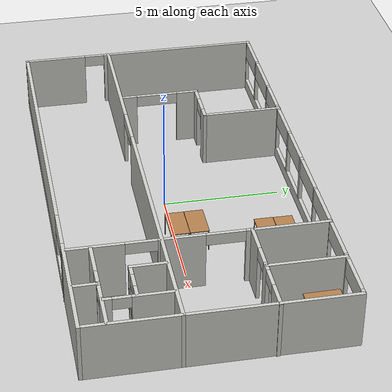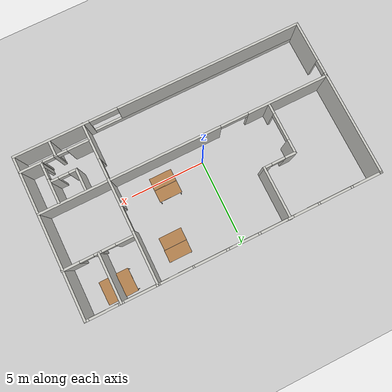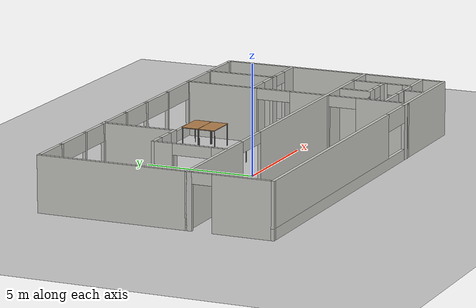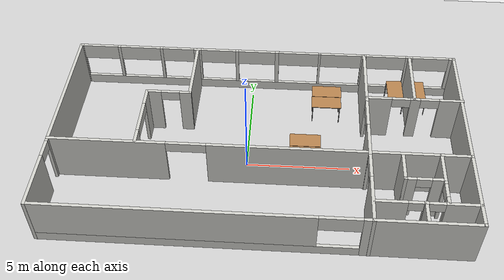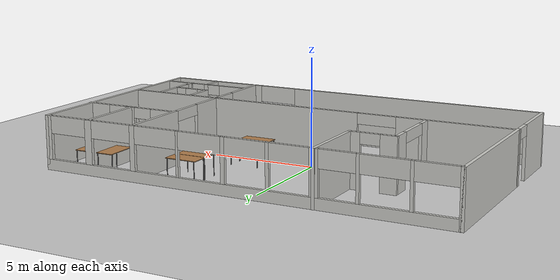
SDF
<sdf version="1.6">
 <world name="default">
  <model name="ground_plane">
   <static>1</static>
   <link name="link">
    <collision name="collision">
     <geometry><plane><normal>0 0 1</normal><size>100 100</size></plane></geometry>
     <surface><friction><ode><mu>100</mu><mu2>50</mu2></ode></friction></surface>
    </collision>
    <visual name="visual">
     <cast_shadows>0</cast_shadows>
     <geometry><plane><normal>0 0 1</normal><size>100 100</size></plane></geometry>
     <material>
      <script><uri>file://media/materials/scripts/gazebo.material</uri><name>Gazebo/Grey</name></script>
     </material>
    </visual>
   </link>
  </model>
  <model name="spacious_building">
   <pose>0.613144 0.37216 0 0 -0 0</pose>
   <link name="Wall_0">
    <pose>-0.019346 5.3 0 0 -0 0</pose>
    <visual name="Wall_0_Visual_0">
     <pose>-9.64969 0 1.25 0 -0 0</pose>
     <geometry><box><size>0.200613 0.15 2.5</size></box></geometry>
     <material>
      <script><uri>file://media/materials/scripts/gazebo.material</uri><name>Gazebo/CeilingTiled</name></script>
      <ambient>0.215686 0.0196078 1 1</ambient>
     </material>
     <meta><layer>0</layer></meta>
    </visual>
    <collision name="Wall_0_Collision_0">
     <geometry><box><size>0.200613 0.15 2.5</size></box></geometry>
     <pose>-9.64969 0 1.25 0 -0 0</pose>
    </collision>
    <visual name="Wall_0_Visual_1">
     <pose>0.100307 0 0.25 0 -0 0</pose>
     <geometry><box><size>19.2994 0.15 0.5</size></box></geometry>
     <material>
      <script><uri>file://media/materials/scripts/gazebo.material</uri><name>Gazebo/CeilingTiled</name></script>
      <ambient>0.215686 0.0196078 1 1</ambient>
     </material>
     <meta><layer>0</layer></meta>
    </visual>
    <collision name="Wall_0_Collision_1">
     <geometry><box><size>19.2994 0.15 0.5</size></box></geometry>
     <pose>0.100307 0 0.25 0 -0 0</pose>
    </collision>
    <visual name="Wall_0_Visual_2">
     <pose>-7.66611 0 1.5 0 -0 0</pose>
     <geometry><box><size>0.146562 0.15 2</size></box></geometry>
     <material>
      <script><uri>file://media/materials/scripts/gazebo.material</uri><name>Gazebo/CeilingTiled</name></script>
      <ambient>0.215686 0.0196078 1 1</ambient>
     </material>
     <meta><layer>0</layer></meta>
    </visual>
    <collision name="Wall_0_Collision_2">
     <geometry><box><size>0.146562 0.15 2</size></box></geometry>
     <pose>-7.66611 0 1.5 0 -0 0</pose>
    </collision>
    <visual name="Wall_0_Visual_3">
     <pose>-5.44364 0 1.5 0 -0 0</pose>
     <geometry><box><size>0.144367 0.15 2</size></box></geometry>
     <material>
      <script><uri>file://media/materials/scripts/gazebo.material</uri><name>Gazebo/CeilingTiled</name></script>
      <ambient>0.215686 0.0196078 1 1</ambient>
     </material>
     <meta><layer>0</layer></meta>
    </visual>
    <collision name="Wall_0_Collision_3">
     <geometry><box><size>0.144367 0.15 2</size></box></geometry>
     <pose>-5.44364 0 1.5 0 -0 0</pose>
    </collision>
    <visual name="Wall_0_Visual_4">
     <pose>-3.5548 0 1.5 0 -0 0</pose>
     <geometry><box><size>0.389307 0.15 2</size></box></geometry>
     <material>
      <script><uri>file://media/materials/scripts/gazebo.material</uri><name>Gazebo/CeilingTiled</name></script>
      <ambient>0.215686 0.0196078 1 1</ambient>
     </material>
     <meta><layer>0</layer></meta>
    </visual>
    <collision name="Wall_0_Collision_4">
     <geometry><box><size>0.389307 0.15 2</size></box></geometry>
     <pose>-3.5548 0 1.5 0 -0 0</pose>
    </collision>
    <visual name="Wall_0_Visual_5">
     <pose>-1.48222 0 1.5 0 -0 0</pose>
     <geometry><box><size>0.161857 0.15 2</size></box></geometry>
     <material>
      <script><uri>file://media/materials/scripts/gazebo.material</uri><name>Gazebo/CeilingTiled</name></script>
      <ambient>0.215686 0.0196078 1 1</ambient>
     </material>
     <meta><layer>0</layer></meta>
    </visual>
    <collision name="Wall_0_Collision_5">
     <geometry><box><size>0.161857 0.15 2</size></box></geometry>
     <pose>-1.48222 0 1.5 0 -0 0</pose>
    </collision>
    <visual name="Wall_0_Visual_6">
     <pose>0.599214 0 1.5 0 -0 0</pose>
     <geometry><box><size>0.197013 0.15 2</size></box></geometry>
     <material>
      <script><uri>file://media/materials/scripts/gazebo.material</uri><name>Gazebo/CeilingTiled</name></script>
      <ambient>0.215686 0.0196078 1 1</ambient>
     </material>
     <meta><layer>0</layer></meta>
    </visual>
    <collision name="Wall_0_Collision_6">
     <geometry><box><size>0.197013 0.15 2</size></box></geometry>
     <pose>0.599214 0 1.5 0 -0 0</pose>
    </collision>
    <visual name="Wall_0_Visual_7">
     <pose>2.8116 0 1.5 0 -0 0</pose>
     <geometry><box><size>0.109758 0.15 2</size></box></geometry>
     <material>
      <script><uri>file://media/materials/scripts/gazebo.material</uri><name>Gazebo/CeilingTiled</name></script>
      <ambient>0.215686 0.0196078 1 1</ambient>
     </material>
     <meta><layer>0</layer></meta>
    </visual>
    <collision name="Wall_0_Collision_7">
     <geometry><box><size>0.109758 0.15 2</size></box></geometry>
     <pose>2.8116 0 1.5 0 -0 0</pose>
    </collision>
    <visual name="Wall_0_Visual_8">
     <pose>5.08532 0 1.5 0 -0 0</pose>
     <geometry><box><size>0.249688 0.15 2</size></box></geometry>
     <material>
      <script><uri>file://media/materials/scripts/gazebo.material</uri><name>Gazebo/CeilingTiled</name></script>
      <ambient>0.215686 0.0196078 1 1</ambient>
     </material>
     <meta><layer>0</layer></meta>
    </visual>
    <collision name="Wall_0_Collision_8">
     <geometry><box><size>0.249688 0.15 2</size></box></geometry>
     <pose>5.08532 0 1.5 0 -0 0</pose>
    </collision>
    <visual name="Wall_0_Visual_9">
     <pose>7.41151 0 1.5 0 -0 0</pose>
     <geometry><box><size>0.354698 0.15 2</size></box></geometry>
     <material>
      <script><uri>file://media/materials/scripts/gazebo.material</uri><name>Gazebo/CeilingTiled</name></script>
      <ambient>0.215686 0.0196078 1 1</ambient>
     </material>
     <meta><layer>0</layer></meta>
    </visual>
    <collision name="Wall_0_Collision_9">
     <geometry><box><size>0.354698 0.15 2</size></box></geometry>
     <pose>7.41151 0 1.5 0 -0 0</pose>
    </collision>
    <visual name="Wall_0_Visual_10">
     <pose>9.59393 0 1.5 0 -0 0</pose>
     <geometry><box><size>0.312136 0.15 2</size></box></geometry>
     <material>
      <script><uri>file://media/materials/scripts/gazebo.material</uri><name>Gazebo/CeilingTiled</name></script>
      <ambient>0.215686 0.0196078 1 1</ambient>
     </material>
     <meta><layer>0</layer></meta>
    </visual>
    <collision name="Wall_0_Collision_10">
     <geometry><box><size>0.312136 0.15 2</size></box></geometry>
     <pose>9.59393 0 1.5 0 -0 0</pose>
    </collision>
    <visual name="Wall_0_Visual_11">
     <pose>-8.64439 0 2.1 0 -0 0</pose>
     <geometry><box><size>1.81 0.15 0.8</size></box></geometry>
     <material>
      <script><uri>file://media/materials/scripts/gazebo.material</uri><name>Gazebo/CeilingTiled</name></script>
      <ambient>0.215686 0.0196078 1 1</ambient>
     </material>
     <meta><layer>0</layer></meta>
    </visual>
    <collision name="Wall_0_Collision_11">
     <geometry><box><size>1.81 0.15 0.8</size></box></geometry>
     <pose>-8.64439 0 2.1 0 -0 0</pose>
    </collision>
    <visual name="Wall_0_Visual_12">
     <pose>-6.55432 0 2.1 0 -0 0</pose>
     <geometry><box><size>2.077 0.15 0.8</size></box></geometry>
     <material>
      <script><uri>file://media/materials/scripts/gazebo.material</uri><name>Gazebo/CeilingTiled</name></script>
      <ambient>0.215686 0.0196078 1 1</ambient>
     </material>
     <meta><layer>0</layer></meta>
    </visual>
    <collision name="Wall_0_Collision_12">
     <geometry><box><size>2.077 0.15 0.8</size></box></geometry>
     <pose>-6.55432 0 2.1 0 -0 0</pose>
    </collision>
    <visual name="Wall_0_Visual_13">
     <pose>-4.56046 0 2.1 0 -0 0</pose>
     <geometry><box><size>1.622 0.15 0.8</size></box></geometry>
     <material>
      <script><uri>file://media/materials/scripts/gazebo.material</uri><name>Gazebo/CeilingTiled</name></script>
      <ambient>0.215686 0.0196078 1 1</ambient>
     </material>
     <meta><layer>0</layer></meta>
    </visual>
    <collision name="Wall_0_Collision_13">
     <geometry><box><size>1.622 0.15 0.8</size></box></geometry>
     <pose>-4.56046 0 2.1 0 -0 0</pose>
    </collision>
    <visual name="Wall_0_Visual_14">
     <pose>-2.46165 0 2.1 0 -0 0</pose>
     <geometry><box><size>1.797 0.15 0.8</size></box></geometry>
     <material>
      <script><uri>file://media/materials/scripts/gazebo.material</uri><name>Gazebo/CeilingTiled</name></script>
      <ambient>0.215686 0.0196078 1 1</ambient>
     </material>
     <meta><layer>0</layer></meta>
    </visual>
    <collision name="Wall_0_Collision_14">
     <geometry><box><size>1.797 0.15 0.8</size></box></geometry>
     <pose>-2.46165 0 2.1 0 -0 0</pose>
    </collision>
    <visual name="Wall_0_Visual_15">
     <pose>-0.450293 0 2.1 0 -0 0</pose>
     <geometry><box><size>1.902 0.15 0.8</size></box></geometry>
     <material>
      <script><uri>file://media/materials/scripts/gazebo.material</uri><name>Gazebo/CeilingTiled</name></script>
      <ambient>0.215686 0.0196078 1 1</ambient>
     </material>
     <meta><layer>0</layer></meta>
    </visual>
    <collision name="Wall_0_Collision_15">
     <geometry><box><size>1.902 0.15 0.8</size></box></geometry>
     <pose>-0.450293 0 2.1 0 -0 0</pose>
    </collision>
    <visual name="Wall_0_Visual_16">
     <pose>1.72722 0 2.1 0 -0 0</pose>
     <geometry><box><size>2.059 0.15 0.8</size></box></geometry>
     <material>
      <script><uri>file://media/materials/scripts/gazebo.material</uri><name>Gazebo/CeilingTiled</name></script>
      <ambient>0.215686 0.0196078 1 1</ambient>
     </material>
     <meta><layer>0</layer></meta>
    </visual>
    <collision name="Wall_0_Collision_16">
     <geometry><box><size>2.059 0.15 0.8</size></box></geometry>
     <pose>1.72722 0 2.1 0 -0 0</pose>
    </collision>
    <visual name="Wall_0_Visual_17">
     <pose>3.91348 0 2.1 0 -0 0</pose>
     <geometry><box><size>2.094 0.15 0.8</size></box></geometry>
     <material>
      <script><uri>file://media/materials/scripts/gazebo.material</uri><name>Gazebo/CeilingTiled</name></script>
      <ambient>0.215686 0.0196078 1 1</ambient>
     </material>
     <meta><layer>0</layer></meta>
    </visual>
    <collision name="Wall_0_Collision_17">
     <geometry><box><size>2.094 0.15 0.8</size></box></geometry>
     <pose>3.91348 0 2.1 0 -0 0</pose>
    </collision>
    <visual name="Wall_0_Visual_18">
     <pose>6.22217 0 2.1 0 -0 0</pose>
     <geometry><box><size>2.024 0.15 0.8</size></box></geometry>
     <material>
      <script><uri>file://media/materials/scripts/gazebo.material</uri><name>Gazebo/CeilingTiled</name></script>
      <ambient>0.215686 0.0196078 1 1</ambient>
     </material>
     <meta><layer>0</layer></meta>
    </visual>
    <collision name="Wall_0_Collision_18">
     <geometry><box><size>2.024 0.15 0.8</size></box></geometry>
     <pose>6.22217 0 2.1 0 -0 0</pose>
    </collision>
    <visual name="Wall_0_Visual_19">
     <pose>8.51336 0 2.1 0 -0 0</pose>
     <geometry><box><size>1.849 0.15 0.8</size></box></geometry>
     <material>
      <script><uri>file://media/materials/scripts/gazebo.material</uri><name>Gazebo/CeilingTiled</name></script>
      <ambient>0.215686 0.0196078 1 1</ambient>
     </material>
     <meta><layer>0</layer></meta>
    </visual>
    <collision name="Wall_0_Collision_19">
     <geometry><box><size>1.849 0.15 0.8</size></box></geometry>
     <pose>8.51336 0 2.1 0 -0 0</pose>
    </collision>
   </link>
   <link name="Wall_1">
    <collision name="Wall_1_Collision">
     <geometry><box><size>10.75 0.15 2.5</size></box></geometry>
     <pose>0 0 1.25 0 -0 0</pose>
    </collision>
    <visual name="Wall_1_Visual">
     <pose>0 0 1.25 0 -0 0</pose>
     <geometry><box><size>10.75 0.15 2.5</size></box></geometry>
     <material>
      <script><uri>file://media/materials/scripts/gazebo.material</uri><name>Gazebo/CeilingTiled</name></script>
      <ambient>1 0.431373 0.207843 1</ambient>
     </material>
     <meta><layer>0</layer></meta>
    </visual>
    <pose>9.65565 0 0 0 0 -1.5708</pose>
   </link>
   <link name="Wall_11">
    <pose>5.08476 -0.01749 0 0 0 -1.5708</pose>
    <visual name="Wall_11_Visual_0">
     <pose>-3.63755 0 1.25 0 -0 0</pose>
     <geometry><box><size>3.47489 0.15 2.5</size></box></geometry>
     <material>
      <script><uri>file://media/materials/scripts/gazebo.material</uri><name>Gazebo/CeilingTiled</name></script>
      <ambient>0.333333 0 0 1</ambient>
     </material>
     <meta><layer>0</layer></meta>
    </visual>
    <collision name="Wall_11_Collision_0">
     <geometry><box><size>3.47489 0.15 2.5</size></box></geometry>
     <pose>-3.63755 0 1.25 0 -0 0</pose>
    </collision>
    <visual name="Wall_11_Visual_1">
     <pose>0.648698 0 1.25 0 -0 0</pose>
     <geometry><box><size>1.89841 0.15 2.5</size></box></geometry>
     <material>
      <script><uri>file://media/materials/scripts/gazebo.material</uri><name>Gazebo/CeilingTiled</name></script>
      <ambient>0.333333 0 0 1</ambient>
     </material>
     <meta><layer>0</layer></meta>
    </visual>
    <collision name="Wall_11_Collision_1">
     <geometry><box><size>1.89841 0.15 2.5</size></box></geometry>
     <pose>0.648698 0 1.25 0 -0 0</pose>
    </collision>
    <visual name="Wall_11_Visual_2">
     <pose>4.13759 0 1.25 0 -0 0</pose>
     <geometry><box><size>2.47483 0.15 2.5</size></box></geometry>
     <material>
      <script><uri>file://media/materials/scripts/gazebo.material</uri><name>Gazebo/CeilingTiled</name></script>
      <ambient>0.333333 0 0 1</ambient>
     </material>
     <meta><layer>0</layer></meta>
    </visual>
    <collision name="Wall_11_Collision_2">
     <geometry><box><size>2.47483 0.15 2.5</size></box></geometry>
     <pose>4.13759 0 1.25 0 -0 0</pose>
    </collision>
    <visual name="Wall_11_Visual_3">
     <pose>-1.10031 0 2.25 0 -0 0</pose>
     <geometry><box><size>1.5996 0.15 0.5</size></box></geometry>
     <material>
      <script><uri>file://media/materials/scripts/gazebo.material</uri><name>Gazebo/CeilingTiled</name></script>
      <ambient>0.333333 0 0 1</ambient>
     </material>
     <meta><layer>0</layer></meta>
    </visual>
    <collision name="Wall_11_Collision_3">
     <geometry><box><size>1.5996 0.15 0.5</size></box></geometry>
     <pose>-1.10031 0 2.25 0 -0 0</pose>
    </collision>
    <visual name="Wall_11_Visual_4">
     <pose>2.24904 0 2.25 0 -0 0</pose>
     <geometry><box><size>1.30227 0.15 0.5</size></box></geometry>
     <material>
      <script><uri>file://media/materials/scripts/gazebo.material</uri><name>Gazebo/CeilingTiled</name></script>
      <ambient>0.333333 0 0 1</ambient>
     </material>
     <meta><layer>0</layer></meta>
    </visual>
    <collision name="Wall_11_Collision_4">
     <geometry><box><size>1.30227 0.15 0.5</size></box></geometry>
     <pose>2.24904 0 2.25 0 -0 0</pose>
    </collision>
   </link>
   <link name="Wall_15">
    <collision name="Wall_15_Collision">
     <geometry><box><size>3.25 0.15 2.5</size></box></geometry>
     <pose>0 0 1.25 0 -0 0</pose>
    </collision>
    <visual name="Wall_15_Visual">
     <pose>0 0 1.25 0 -0 0</pose>
     <geometry><box><size>3.25 0.15 2.5</size></box></geometry>
     <material>
      <script><uri>file://media/materials/scripts/gazebo.material</uri><name>Gazebo/CeilingTiled</name></script>
      <ambient>0 0.666667 1 1</ambient>
     </material>
     <meta><layer>0</layer></meta>
    </visual>
    <pose>7.40189 3.74021 0 0 0 -1.5708</pose>
   </link>
   <link name="Wall_17">
    <collision name="Wall_17_Collision">
     <geometry><box><size>1.6 0.15 2.5</size></box></geometry>
     <pose>0 0 1.25 0 -0 0</pose>
    </collision>
    <visual name="Wall_17_Visual">
     <pose>0 0 1.25 0 -0 0</pose>
     <geometry><box><size>1.6 0.15 2.5</size></box></geometry>
     <material>
      <script><uri>file://media/materials/scripts/gazebo.material</uri><name>Gazebo/CeilingTiled</name></script>
      <ambient>0.435294 0.796078 0.67451 1</ambient>
     </material>
     <meta><layer>0</layer></meta>
    </visual>
    <pose>6.55568 -2.20642 0 0 0 -1.5708</pose>
   </link>
   <link name="Wall_2">
    <pose>-0.019346 -5.3 0 0 -0 3.14159</pose>
    <visual name="Wall_2_Visual_0">
     <pose>-7.21529 0 1.25 0 -0 0</pose>
     <geometry><box><size>5.06942 0.15 2.5</size></box></geometry>
     <material>
      <script><uri>file://media/materials/scripts/gazebo.material</uri><name>Gazebo/CeilingTiled</name></script>
      <ambient>0.435294 0.796078 0.67451 1</ambient>
     </material>
     <meta><layer>0</layer></meta>
    </visual>
    <collision name="Wall_2_Collision_0">
     <geometry><box><size>5.06942 0.15 2.5</size></box></geometry>
     <pose>-7.21529 0 1.25 0 -0 0</pose>
    </collision>
    <visual name="Wall_2_Visual_1">
     <pose>2.53471 0 0.25 0 -0 0</pose>
     <geometry><box><size>14.4306 0.15 0.5</size></box></geometry>
     <material>
      <script><uri>file://media/materials/scripts/gazebo.material</uri><name>Gazebo/CeilingTiled</name></script>
      <ambient>0.435294 0.796078 0.67451 1</ambient>
     </material>
     <meta><layer>0</layer></meta>
    </visual>
    <collision name="Wall_2_Collision_1">
     <geometry><box><size>14.4306 0.15 0.5</size></box></geometry>
     <pose>2.53471 0 0.25 0 -0 0</pose>
    </collision>
    <visual name="Wall_2_Visual_2">
     <pose>3.47671 0 1.5 0 -0 0</pose>
     <geometry><box><size>12.5466 0.15 2</size></box></geometry>
     <material>
      <script><uri>file://media/materials/scripts/gazebo.material</uri><name>Gazebo/CeilingTiled</name></script>
      <ambient>0.435294 0.796078 0.67451 1</ambient>
     </material>
     <meta><layer>0</layer></meta>
    </visual>
    <collision name="Wall_2_Collision_2">
     <geometry><box><size>12.5466 0.15 2</size></box></geometry>
     <pose>3.47671 0 1.5 0 -0 0</pose>
    </collision>
    <visual name="Wall_2_Visual_3">
     <pose>-3.73858 0 2.1 0 -0 0</pose>
     <geometry><box><size>1.884 0.15 0.8</size></box></geometry>
     <material>
      <script><uri>file://media/materials/scripts/gazebo.material</uri><name>Gazebo/CeilingTiled</name></script>
      <ambient>0.435294 0.796078 0.67451 1</ambient>
     </material>
     <meta><layer>0</layer></meta>
    </visual>
    <collision name="Wall_2_Collision_3">
     <geometry><box><size>1.884 0.15 0.8</size></box></geometry>
     <pose>-3.73858 0 2.1 0 -0 0</pose>
    </collision>
   </link>
   <link name="Wall_20">
    <pose>8.28797 -2.83099 0 0 0 -1.5708</pose>
    <visual name="Wall_20_Visual_0">
     <pose>-0.558809 0 1.25 0 -0 0</pose>
     <geometry><box><size>1.73238 0.15 2.5</size></box></geometry>
     <material>
      <script><uri>file://media/materials/scripts/gazebo.material</uri><name>Gazebo/CeilingTiled</name></script>
      <ambient>0 0.666667 1 1</ambient>
     </material>
     <meta><layer>0</layer></meta>
    </visual>
    <collision name="Wall_20_Collision_0">
     <geometry><box><size>1.73238 0.15 2.5</size></box></geometry>
     <pose>-0.558809 0 1.25 0 -0 0</pose>
    </collision>
    <visual name="Wall_20_Visual_1">
     <pose>1.23615 0 1.25 0 -0 0</pose>
     <geometry><box><size>0.377709 0.15 2.5</size></box></geometry>
     <material>
      <script><uri>file://media/materials/scripts/gazebo.material</uri><name>Gazebo/CeilingTiled</name></script>
      <ambient>0 0.666667 1 1</ambient>
     </material>
     <meta><layer>0</layer></meta>
    </visual>
    <collision name="Wall_20_Collision_1">
     <geometry><box><size>0.377709 0.15 2.5</size></box></geometry>
     <pose>1.23615 0 1.25 0 -0 0</pose>
    </collision>
    <visual name="Wall_20_Visual_2">
     <pose>0.677336 0 2.25 0 -0 0</pose>
     <geometry><box><size>0.739909 0.15 0.5</size></box></geometry>
     <material>
      <script><uri>file://media/materials/scripts/gazebo.material</uri><name>Gazebo/CeilingTiled</name></script>
      <ambient>0 0.666667 1 1</ambient>
     </material>
     <meta><layer>0</layer></meta>
    </visual>
    <collision name="Wall_20_Collision_2">
     <geometry><box><size>0.739909 0.15 0.5</size></box></geometry>
     <pose>0.677336 0 2.25 0 -0 0</pose>
    </collision>
   </link>
   <link name="Wall_22">
    <pose>7.39869 -4.25824 0 0 -0 3.14159</pose>
    <visual name="Wall_22_Visual_0">
     <pose>-1.53589 0 1.25 0 -0 0</pose>
     <geometry><box><size>1.52823 0.15 2.5</size></box></geometry>
     <material>
      <script><uri>file://media/materials/scripts/gazebo.material</uri><name>Gazebo/CeilingTiled</name></script>
      <ambient>0.666667 0 1 1</ambient>
     </material>
     <meta><layer>0</layer></meta>
    </visual>
    <collision name="Wall_22_Collision_0">
     <geometry><box><size>1.52823 0.15 2.5</size></box></geometry>
     <pose>-1.53589 0 1.25 0 -0 0</pose>
    </collision>
    <visual name="Wall_22_Visual_1">
     <pose>0.058443 0 1.25 0 -0 0</pose>
     <geometry><box><size>0.214918 0.15 2.5</size></box></geometry>
     <material>
      <script><uri>file://media/materials/scripts/gazebo.material</uri><name>Gazebo/CeilingTiled</name></script>
      <ambient>0.666667 0 1 1</ambient>
     </material>
     <meta><layer>0</layer></meta>
    </visual>
    <collision name="Wall_22_Collision_1">
     <geometry><box><size>0.214918 0.15 2.5</size></box></geometry>
     <pose>0.058443 0 1.25 0 -0 0</pose>
    </collision>
    <visual name="Wall_22_Visual_2">
     <pose>1.56288 0 1.25 0 -0 0</pose>
     <geometry><box><size>1.47423 0.15 2.5</size></box></geometry>
     <material>
      <script><uri>file://media/materials/scripts/gazebo.material</uri><name>Gazebo/CeilingTiled</name></script>
      <ambient>0.666667 0 1 1</ambient>
     </material>
     <meta><layer>0</layer></meta>
    </visual>
    <collision name="Wall_22_Collision_2">
     <geometry><box><size>1.47423 0.15 2.5</size></box></geometry>
     <pose>1.56288 0 1.25 0 -0 0</pose>
    </collision>
    <visual name="Wall_22_Visual_3">
     <pose>-0.410395 0 2.25 0 -0 0</pose>
     <geometry><box><size>0.722756 0.15 0.5</size></box></geometry>
     <material>
      <script><uri>file://media/materials/scripts/gazebo.material</uri><name>Gazebo/CeilingTiled</name></script>
      <ambient>0.666667 0 1 1</ambient>
     </material>
     <meta><layer>0</layer></meta>
    </visual>
    <collision name="Wall_22_Collision_3">
     <geometry><box><size>0.722756 0.15 0.5</size></box></geometry>
     <pose>-0.410395 0 2.25 0 -0 0</pose>
    </collision>
    <visual name="Wall_22_Visual_4">
     <pose>0.495834 0 2.25 0 -0 0</pose>
     <geometry><box><size>0.659864 0.15 0.5</size></box></geometry>
     <material>
      <script><uri>file://media/materials/scripts/gazebo.material</uri><name>Gazebo/CeilingTiled</name></script>
      <ambient>0.666667 0 1 1</ambient>
     </material>
     <meta><layer>0</layer></meta>
    </visual>
    <collision name="Wall_22_Collision_4">
     <geometry><box><size>0.659864 0.15 0.5</size></box></geometry>
     <pose>0.495834 0 2.25 0 -0 0</pose>
    </collision>
   </link>
   <link name="Wall_24">
    <collision name="Wall_24_Collision">
     <geometry><box><size>1 0.15 2.5</size></box></geometry>
     <pose>0 0 1.25 0 -0 0</pose>
    </collision>
    <visual name="Wall_24_Visual">
     <pose>0 0 1.25 0 -0 0</pose>
     <geometry><box><size>1 0.15 2.5</size></box></geometry>
     <material>
      <script><uri>file://media/materials/scripts/gazebo.material</uri><name>Gazebo/CeilingTiled</name></script>
      <ambient>0.666667 0 1 1</ambient>
     </material>
     <meta><layer>0</layer></meta>
    </visual>
    <pose>7.33577 -4.76259 0 0 0 -1.5708</pose>
   </link>
   <link name="Wall_26">
    <pose>7.38068 -2.93142 0 0 -0 0</pose>
    <visual name="Wall_26_Visual_0">
     <pose>-0.62023 0 1.25 0 -0 0</pose>
     <geometry><box><size>0.559539 0.15 2.5</size></box></geometry>
     <material>
      <script><uri>file://media/materials/scripts/gazebo.material</uri><name>Gazebo/CeilingTiled</name></script>
      <ambient>0.921569 0.807843 0.615686 1</ambient>
     </material>
     <meta><layer>0</layer></meta>
    </visual>
    <collision name="Wall_26_Collision_0">
     <geometry><box><size>0.559539 0.15 2.5</size></box></geometry>
     <pose>-0.62023 0 1.25 0 -0 0</pose>
    </collision>
    <visual name="Wall_26_Visual_1">
     <pose>0.620035 0 1.25 0 -0 0</pose>
     <geometry><box><size>0.559929 0.15 2.5</size></box></geometry>
     <material>
      <script><uri>file://media/materials/scripts/gazebo.material</uri><name>Gazebo/CeilingTiled</name></script>
      <ambient>0.921569 0.807843 0.615686 1</ambient>
     </material>
     <meta><layer>0</layer></meta>
    </visual>
    <collision name="Wall_26_Collision_1">
     <geometry><box><size>0.559929 0.15 2.5</size></box></geometry>
     <pose>0.620035 0 1.25 0 -0 0</pose>
    </collision>
    <visual name="Wall_26_Visual_2">
     <pose>-0.000195 0 2.25 0 -0 0</pose>
     <geometry><box><size>0.680531 0.15 0.5</size></box></geometry>
     <material>
      <script><uri>file://media/materials/scripts/gazebo.material</uri><name>Gazebo/CeilingTiled</name></script>
      <ambient>0.921569 0.807843 0.615686 1</ambient>
     </material>
     <meta><layer>0</layer></meta>
    </visual>
    <collision name="Wall_26_Collision_2">
     <geometry><box><size>0.680531 0.15 0.5</size></box></geometry>
     <pose>-0.000195 0 2.25 0 -0 0</pose>
    </collision>
   </link>
   <link name="Wall_28">
    <pose>7.39435 2.14097 0 0 -0 0</pose>
    <visual name="Wall_28_Visual_0">
     <pose>-1.73172 0 1.25 0 -0 0</pose>
     <geometry><box><size>1.28656 0.15 2.5</size></box></geometry>
     <material>
      <script><uri>file://media/materials/scripts/gazebo.material</uri><name>Gazebo/CeilingTiled</name></script>
      <ambient>0.333333 0.666667 0.498039 1</ambient>
     </material>
     <meta><layer>0</layer></meta>
    </visual>
    <collision name="Wall_28_Collision_0">
     <geometry><box><size>1.28656 0.15 2.5</size></box></geometry>
     <pose>-1.73172 0 1.25 0 -0 0</pose>
    </collision>
    <visual name="Wall_28_Visual_1">
     <pose>0.052413 0 1.25 0 -0 0</pose>
     <geometry><box><size>0.481714 0.15 2.5</size></box></geometry>
     <material>
      <script><uri>file://media/materials/scripts/gazebo.material</uri><name>Gazebo/CeilingTiled</name></script>
      <ambient>0.333333 0.666667 0.498039 1</ambient>
     </material>
     <meta><layer>0</layer></meta>
    </visual>
    <collision name="Wall_28_Collision_1">
     <geometry><box><size>0.481714 0.15 2.5</size></box></geometry>
     <pose>0.052413 0 1.25 0 -0 0</pose>
    </collision>
    <visual name="Wall_28_Visual_2">
     <pose>1.78414 0 1.25 0 -0 0</pose>
     <geometry><box><size>1.18173 0.15 2.5</size></box></geometry>
     <material>
      <script><uri>file://media/materials/scripts/gazebo.material</uri><name>Gazebo/CeilingTiled</name></script>
      <ambient>0.333333 0.666667 0.498039 1</ambient>
     </material>
     <meta><layer>0</layer></meta>
    </visual>
    <collision name="Wall_28_Collision_2">
     <geometry><box><size>1.18173 0.15 2.5</size></box></geometry>
     <pose>1.78414 0 1.25 0 -0 0</pose>
    </collision>
    <visual name="Wall_28_Visual_3">
     <pose>-0.638444 0 2.25 0 -0 0</pose>
     <geometry><box><size>0.9 0.15 0.5</size></box></geometry>
     <material>
      <script><uri>file://media/materials/scripts/gazebo.material</uri><name>Gazebo/CeilingTiled</name></script>
      <ambient>0.333333 0.666667 0.498039 1</ambient>
     </material>
     <meta><layer>0</layer></meta>
    </visual>
    <collision name="Wall_28_Collision_3">
     <geometry><box><size>0.9 0.15 0.5</size></box></geometry>
     <pose>-0.638444 0 2.25 0 -0 0</pose>
    </collision>
    <visual name="Wall_28_Visual_4">
     <pose>0.74327 0 2.25 0 -0 0</pose>
     <geometry><box><size>0.9 0.15 0.5</size></box></geometry>
     <material>
      <script><uri>file://media/materials/scripts/gazebo.material</uri><name>Gazebo/CeilingTiled</name></script>
      <ambient>0.333333 0.666667 0.498039 1</ambient>
     </material>
     <meta><layer>0</layer></meta>
    </visual>
    <collision name="Wall_28_Collision_4">
     <geometry><box><size>0.9 0.15 0.5</size></box></geometry>
     <pose>0.74327 0 2.25 0 -0 0</pose>
    </collision>
   </link>
   <link name="Wall_3">
    <pose>-9.69435 0 0 0 -0 1.5708</pose>
    <visual name="Wall_3_Visual_0">
     <pose>-3.98455 0 1.25 0 -0 0</pose>
     <geometry><box><size>2.7809 0.15 2.5</size></box></geometry>
     <material>
      <script><uri>file://media/materials/scripts/gazebo.material</uri><name>Gazebo/CeilingTiled</name></script>
      <ambient>0.333333 0.666667 0.498039 1</ambient>
     </material>
     <meta><layer>0</layer></meta>
    </visual>
    <collision name="Wall_3_Collision_0">
     <geometry><box><size>2.7809 0.15 2.5</size></box></geometry>
     <pose>-3.98455 0 1.25 0 -0 0</pose>
    </collision>
    <visual name="Wall_3_Visual_1">
     <pose>1.84045 0 1.25 0 -0 0</pose>
     <geometry><box><size>7.0691 0.15 2.5</size></box></geometry>
     <material>
      <script><uri>file://media/materials/scripts/gazebo.material</uri><name>Gazebo/CeilingTiled</name></script>
      <ambient>0.333333 0.666667 0.498039 1</ambient>
     </material>
     <meta><layer>0</layer></meta>
    </visual>
    <collision name="Wall_3_Collision_1">
     <geometry><box><size>7.0691 0.15 2.5</size></box></geometry>
     <pose>1.84045 0 1.25 0 -0 0</pose>
    </collision>
    <visual name="Wall_3_Visual_2">
     <pose>-2.1441 0 2.25 0 -0 0</pose>
     <geometry><box><size>0.9 0.15 0.5</size></box></geometry>
     <material>
      <script><uri>file://media/materials/scripts/gazebo.material</uri><name>Gazebo/CeilingTiled</name></script>
      <ambient>0.333333 0.666667 0.498039 1</ambient>
     </material>
     <meta><layer>0</layer></meta>
    </visual>
    <collision name="Wall_3_Collision_2">
     <geometry><box><size>0.9 0.15 0.5</size></box></geometry>
     <pose>-2.1441 0 2.25 0 -0 0</pose>
    </collision>
   </link>
   <link name="Wall_5">
    <collision name="Wall_5_Collision">
     <geometry><box><size>3.5 0.15 2.5</size></box></geometry>
     <pose>0 0 1.25 0 -0 0</pose>
    </collision>
    <visual name="Wall_5_Visual">
     <pose>0 0 1.25 0 -0 0</pose>
     <geometry><box><size>3.5 0.15 2.5</size></box></geometry>
     <material>
      <script><uri>file://media/materials/scripts/gazebo.material</uri><name>Gazebo/CeilingTiled</name></script>
      <ambient>0 0.666667 1 1</ambient>
     </material>
     <meta><layer>0</layer></meta>
    </visual>
    <pose>-3.55533 3.64249 0 0 0 -1.5708</pose>
   </link>
   <link name="Wall_6">
    <pose>-4.60533 1.96749 0 0 -0 3.14159</pose>
    <visual name="Wall_6_Visual_0">
     <pose>-0.836318 0 1.25 0 -0 0</pose>
     <geometry><box><size>0.577364 0.15 2.5</size></box></geometry>
     <material>
      <script><uri>file://media/materials/scripts/gazebo.material</uri><name>Gazebo/CeilingTiled</name></script>
      <ambient>0.666667 1 0.498039 1</ambient>
     </material>
     <meta><layer>0</layer></meta>
    </visual>
    <collision name="Wall_6_Collision_0">
     <geometry><box><size>0.577364 0.15 2.5</size></box></geometry>
     <pose>-0.836318 0 1.25 0 -0 0</pose>
    </collision>
    <visual name="Wall_6_Visual_1">
     <pose>0.738682 0 1.25 0 -0 0</pose>
     <geometry><box><size>0.772636 0.15 2.5</size></box></geometry>
     <material>
      <script><uri>file://media/materials/scripts/gazebo.material</uri><name>Gazebo/CeilingTiled</name></script>
      <ambient>0.666667 1 0.498039 1</ambient>
     </material>
     <meta><layer>0</layer></meta>
    </visual>
    <collision name="Wall_6_Collision_1">
     <geometry><box><size>0.772636 0.15 2.5</size></box></geometry>
     <pose>0.738682 0 1.25 0 -0 0</pose>
    </collision>
    <visual name="Wall_6_Visual_2">
     <pose>-0.097636 0 2.25 0 -0 0</pose>
     <geometry><box><size>0.9 0.15 0.5</size></box></geometry>
     <material>
      <script><uri>file://media/materials/scripts/gazebo.material</uri><name>Gazebo/CeilingTiled</name></script>
      <ambient>0.666667 1 0.498039 1</ambient>
     </material>
     <meta><layer>0</layer></meta>
    </visual>
    <collision name="Wall_6_Collision_2">
     <geometry><box><size>0.9 0.15 0.5</size></box></geometry>
     <pose>-0.097636 0 2.25 0 -0 0</pose>
    </collision>
   </link>
   <link name="Wall_7">
    <pose>-5.65533 0.29249 0 0 0 -1.5708</pose>
    <visual name="Wall_7_Visual_0">
     <pose>-1.26342 0 1.25 0 -0 0</pose>
     <geometry><box><size>0.973159 0.15 2.5</size></box></geometry>
     <material>
      <script><uri>file://media/materials/scripts/gazebo.material</uri><name>Gazebo/CeilingTiled</name></script>
      <ambient>1 1 0.498039 1</ambient>
     </material>
     <meta><layer>0</layer></meta>
    </visual>
    <collision name="Wall_7_Collision_0">
     <geometry><box><size>0.973159 0.15 2.5</size></box></geometry>
     <pose>-1.26342 0 1.25 0 -0 0</pose>
    </collision>
    <visual name="Wall_7_Visual_1">
     <pose>1.39132 0 1.25 0 -0 0</pose>
     <geometry><box><size>0.717358 0.15 2.5</size></box></geometry>
     <material>
      <script><uri>file://media/materials/scripts/gazebo.material</uri><name>Gazebo/CeilingTiled</name></script>
      <ambient>1 1 0.498039 1</ambient>
     </material>
     <meta><layer>0</layer></meta>
    </visual>
    <collision name="Wall_7_Collision_1">
     <geometry><box><size>0.717358 0.15 2.5</size></box></geometry>
     <pose>1.39132 0 1.25 0 -0 0</pose>
    </collision>
    <visual name="Wall_7_Visual_2">
     <pose>0.1279 0 2.25 0 -0 0</pose>
     <geometry><box><size>1.80948 0.15 0.5</size></box></geometry>
     <material>
      <script><uri>file://media/materials/scripts/gazebo.material</uri><name>Gazebo/CeilingTiled</name></script>
      <ambient>1 1 0.498039 1</ambient>
     </material>
     <meta><layer>0</layer></meta>
    </visual>
    <collision name="Wall_7_Collision_2">
     <geometry><box><size>1.80948 0.15 0.5</size></box></geometry>
     <pose>0.1279 0 2.25 0 -0 0</pose>
    </collision>
   </link>
   <link name="Wall_9">
    <pose>-0.019346 -1.46865 0 0 -0 0</pose>
    <visual name="Wall_9_Visual_0">
     <pose>-6.98563 0 1.25 0 -0 0</pose>
     <geometry><box><size>5.52874 0.15 2.5</size></box></geometry>
     <material>
      <script><uri>file://media/materials/scripts/gazebo.material</uri><name>Gazebo/CeilingTiled</name></script>
      <ambient>0.996078 0.47451 0.0196078 1</ambient>
     </material>
     <meta><layer>0</layer></meta>
    </visual>
    <collision name="Wall_9_Collision_0">
     <geometry><box><size>5.52874 0.15 2.5</size></box></geometry>
     <pose>-6.98563 0 1.25 0 -0 0</pose>
    </collision>
    <visual name="Wall_9_Visual_1">
     <pose>3.69535 0 1.25 0 -0 0</pose>
     <geometry><box><size>12.1093 0.15 2.5</size></box></geometry>
     <material>
      <script><uri>file://media/materials/scripts/gazebo.material</uri><name>Gazebo/CeilingTiled</name></script>
      <ambient>0.996078 0.47451 0.0196078 1</ambient>
     </material>
     <meta><layer>0</layer></meta>
    </visual>
    <collision name="Wall_9_Collision_1">
     <geometry><box><size>12.1093 0.15 2.5</size></box></geometry>
     <pose>3.69535 0 1.25 0 -0 0</pose>
    </collision>
    <visual name="Wall_9_Visual_2">
     <pose>-3.29028 0 2.25 0 -0 0</pose>
     <geometry><box><size>1.86195 0.15 0.5</size></box></geometry>
     <material>
      <script><uri>file://media/materials/scripts/gazebo.material</uri><name>Gazebo/CeilingTiled</name></script>
      <ambient>0.996078 0.47451 0.0196078 1</ambient>
     </material>
     <meta><layer>0</layer></meta>
    </visual>
    <collision name="Wall_9_Collision_2">
     <geometry><box><size>1.86195 0.15 0.5</size></box></geometry>
     <pose>-3.29028 0 2.25 0 -0 0</pose>
    </collision>
   </link>
   <static>1</static>
  </model>
  <model name="table_1">
   <static>1</static>
   <link name="link">
    <collision name="surface">
     <pose>0 0 1 0 -0 0</pose>
     <geometry><box><size>1.5 0.8 0.03</size></box></geometry>
     <surface><friction><ode><mu>0.6</mu><mu2>0.6</mu2></ode></friction></surface>
    </collision>
    <visual name="visual1">
     <pose>0 0 1 0 -0 0</pose>
     <geometry><box><size>1.5 0.8 0.03</size></box></geometry>
     <material>
      <script><uri>file://media/materials/scripts/gazebo.material</uri><name>Gazebo/Wood</name></script>
     </material>
    </visual>
    <collision name="front_left_leg">
     <pose>0.68 0.38 0.5 0 -0 0</pose>
     <geometry><cylinder><radius>0.02</radius><length>1</length></cylinder></geometry>
    </collision>
    <visual name="front_left_leg">
     <pose>0.68 0.38 0.5 0 -0 0</pose>
     <geometry><cylinder><radius>0.02</radius><length>1</length></cylinder></geometry>
     <material>
      <script><uri>file://media/materials/scripts/gazebo.material</uri><name>Gazebo/Grey</name></script>
     </material>
    </visual>
    <collision name="front_right_leg">
     <pose>0.68 -0.38 0.5 0 -0 0</pose>
     <geometry><cylinder><radius>0.02</radius><length>1</length></cylinder></geometry>
    </collision>
    <visual name="front_right_leg">
     <pose>0.68 -0.38 0.5 0 -0 0</pose>
     <geometry><cylinder><radius>0.02</radius><length>1</length></cylinder></geometry>
     <material>
      <script><uri>file://media/materials/scripts/gazebo.material</uri><name>Gazebo/Grey</name></script>
     </material>
    </visual>
    <collision name="back_right_leg">
     <pose>-0.68 -0.38 0.5 0 -0 0</pose>
     <geometry><cylinder><radius>0.02</radius><length>1</length></cylinder></geometry>
    </collision>
    <visual name="back_right_leg">
     <pose>-0.68 -0.38 0.5 0 -0 0</pose>
     <geometry><cylinder><radius>0.02</radius><length>1</length></cylinder></geometry>
     <material>
      <script><uri>file://media/materials/scripts/gazebo.material</uri><name>Gazebo/Grey</name></script>
     </material>
    </visual>
    <collision name="back_left_leg">
     <pose>-0.68 0.38 0.5 0 -0 0</pose>
     <geometry><cylinder><radius>0.02</radius><length>1</length></cylinder></geometry>
    </collision>
    <visual name="back_left_leg">
     <pose>-0.68 0.38 0.5 0 -0 0</pose>
     <geometry><cylinder><radius>0.02</radius><length>1</length></cylinder></geometry>
     <material>
      <script><uri>file://media/materials/scripts/gazebo.material</uri><name>Gazebo/Grey</name></script>
     </material>
    </visual>
   </link>
   <pose>2.80382 0.047046 0 0 -0 0</pose>
  </model>
  <model name="table_2">
   <static>1</static>
   <link name="link">
    <collision name="surface">
     <pose>0 0 1 0 -0 0</pose>
     <geometry><box><size>1.5 0.8 0.03</size></box></geometry>
     <surface><friction><ode><mu>0.6</mu><mu2>0.6</mu2></ode></friction></surface>
    </collision>
    <visual name="visual1">
     <pose>0 0 1 0 -0 0</pose>
     <geometry><box><size>1.5 0.8 0.03</size></box></geometry>
     <material>
      <script><uri>file://media/materials/scripts/gazebo.material</uri><name>Gazebo/Wood</name></script>
     </material>
    </visual>
    <collision name="front_left_leg">
     <pose>0.68 0.38 0.5 0 -0 0</pose>
     <geometry><cylinder><radius>0.02</radius><length>1</length></cylinder></geometry>
    </collision>
    <visual name="front_left_leg">
     <pose>0.68 0.38 0.5 0 -0 0</pose>
     <geometry><cylinder><radius>0.02</radius><length>1</length></cylinder></geometry>
     <material>
      <script><uri>file://media/materials/scripts/gazebo.material</uri><name>Gazebo/Grey</name></script>
     </material>
    </visual>
    <collision name="front_right_leg">
     <pose>0.68 -0.38 0.5 0 -0 0</pose>
     <geometry><cylinder><radius>0.02</radius><length>1</length></cylinder></geometry>
    </collision>
    <visual name="front_right_leg">
     <pose>0.68 -0.38 0.5 0 -0 0</pose>
     <geometry><cylinder><radius>0.02</radius><length>1</length></cylinder></geometry>
     <material>
      <script><uri>file://media/materials/scripts/gazebo.material</uri><name>Gazebo/Grey</name></script>
     </material>
    </visual>
    <collision name="back_right_leg">
     <pose>-0.68 -0.38 0.5 0 -0 0</pose>
     <geometry><cylinder><radius>0.02</radius><length>1</length></cylinder></geometry>
    </collision>
    <visual name="back_right_leg">
     <pose>-0.68 -0.38 0.5 0 -0 0</pose>
     <geometry><cylinder><radius>0.02</radius><length>1</length></cylinder></geometry>
     <material>
      <script><uri>file://media/materials/scripts/gazebo.material</uri><name>Gazebo/Grey</name></script>
     </material>
    </visual>
    <collision name="back_left_leg">
     <pose>-0.68 0.38 0.5 0 -0 0</pose>
     <geometry><cylinder><radius>0.02</radius><length>1</length></cylinder></geometry>
    </collision>
    <visual name="back_left_leg">
     <pose>-0.68 0.38 0.5 0 -0 0</pose>
     <geometry><cylinder><radius>0.02</radius><length>1</length></cylinder></geometry>
     <material>
      <script><uri>file://media/materials/scripts/gazebo.material</uri><name>Gazebo/Grey</name></script>
     </material>
    </visual>
   </link>
   <pose>2.79953 0.861475 0 0 -0 0</pose>
  </model>
  <model name="table_3">
   <static>1</static>
   <link name="link">
    <collision name="surface">
     <pose>0 0 1 0 -0 0</pose>
     <geometry><box><size>1.5 0.8 0.03</size></box></geometry>
     <surface><friction><ode><mu>0.6</mu><mu2>0.6</mu2></ode></friction></surface>
    </collision>
    <visual name="visual1">
     <pose>0 0 1 0 -0 0</pose>
     <geometry><box><size>1.5 0.8 0.03</size></box></geometry>
     <material>
      <script><uri>file://media/materials/scripts/gazebo.material</uri><name>Gazebo/Wood</name></script>
     </material>
    </visual>
    <collision name="front_left_leg">
     <pose>0.68 0.38 0.5 0 -0 0</pose>
     <geometry><cylinder><radius>0.02</radius><length>1</length></cylinder></geometry>
    </collision>
    <visual name="front_left_leg">
     <pose>0.68 0.38 0.5 0 -0 0</pose>
     <geometry><cylinder><radius>0.02</radius><length>1</length></cylinder></geometry>
     <material>
      <script><uri>file://media/materials/scripts/gazebo.material</uri><name>Gazebo/Grey</name></script>
     </material>
    </visual>
    <collision name="front_right_leg">
     <pose>0.68 -0.38 0.5 0 -0 0</pose>
     <geometry><cylinder><radius>0.02</radius><length>1</length></cylinder></geometry>
    </collision>
    <visual name="front_right_leg">
     <pose>0.68 -0.38 0.5 0 -0 0</pose>
     <geometry><cylinder><radius>0.02</radius><length>1</length></cylinder></geometry>
     <material>
      <script><uri>file://media/materials/scripts/gazebo.material</uri><name>Gazebo/Grey</name></script>
     </material>
    </visual>
    <collision name="back_right_leg">
     <pose>-0.68 -0.38 0.5 0 -0 0</pose>
     <geometry><cylinder><radius>0.02</radius><length>1</length></cylinder></geometry>
    </collision>
    <visual name="back_right_leg">
     <pose>-0.68 -0.38 0.5 0 -0 0</pose>
     <geometry><cylinder><radius>0.02</radius><length>1</length></cylinder></geometry>
     <material>
      <script><uri>file://media/materials/scripts/gazebo.material</uri><name>Gazebo/Grey</name></script>
     </material>
    </visual>
    <collision name="back_left_leg">
     <pose>-0.68 0.38 0.5 0 -0 0</pose>
     <geometry><cylinder><radius>0.02</radius><length>1</length></cylinder></geometry>
    </collision>
    <visual name="back_left_leg">
     <pose>-0.68 0.38 0.5 0 -0 0</pose>
     <geometry><cylinder><radius>0.02</radius><length>1</length></cylinder></geometry>
     <material>
      <script><uri>file://media/materials/scripts/gazebo.material</uri><name>Gazebo/Grey</name></script>
     </material>
    </visual>
   </link>
   <pose>3.85462 4.42765 0 0 -0 0</pose>
  </model>
  <model name="table_4">
   <static>1</static>
   <link name="link">
    <collision name="surface">
     <pose>0 0 1 0 -0 0</pose>
     <geometry><box><size>1.5 0.8 0.03</size></box></geometry>
     <surface><friction><ode><mu>0.6</mu><mu2>0.6</mu2></ode></friction></surface>
    </collision>
    <visual name="visual1">
     <pose>0 0 1 0 -0 0</pose>
     <geometry><box><size>1.5 0.8 0.03</size></box></geometry>
     <material>
      <script><uri>file://media/materials/scripts/gazebo.material</uri><name>Gazebo/Wood</name></script>
     </material>
    </visual>
    <collision name="front_left_leg">
     <pose>0.68 0.38 0.5 0 -0 0</pose>
     <geometry><cylinder><radius>0.02</radius><length>1</length></cylinder></geometry>
    </collision>
    <visual name="front_left_leg">
     <pose>0.68 0.38 0.5 0 -0 0</pose>
     <geometry><cylinder><radius>0.02</radius><length>1</length></cylinder></geometry>
     <material>
      <script><uri>file://media/materials/scripts/gazebo.material</uri><name>Gazebo/Grey</name></script>
     </material>
    </visual>
    <collision name="front_right_leg">
     <pose>0.68 -0.38 0.5 0 -0 0</pose>
     <geometry><cylinder><radius>0.02</radius><length>1</length></cylinder></geometry>
    </collision>
    <visual name="front_right_leg">
     <pose>0.68 -0.38 0.5 0 -0 0</pose>
     <geometry><cylinder><radius>0.02</radius><length>1</length></cylinder></geometry>
     <material>
      <script><uri>file://media/materials/scripts/gazebo.material</uri><name>Gazebo/Grey</name></script>
     </material>
    </visual>
    <collision name="back_right_leg">
     <pose>-0.68 -0.38 0.5 0 -0 0</pose>
     <geometry><cylinder><radius>0.02</radius><length>1</length></cylinder></geometry>
    </collision>
    <visual name="back_right_leg">
     <pose>-0.68 -0.38 0.5 0 -0 0</pose>
     <geometry><cylinder><radius>0.02</radius><length>1</length></cylinder></geometry>
     <material>
      <script><uri>file://media/materials/scripts/gazebo.material</uri><name>Gazebo/Grey</name></script>
     </material>
    </visual>
    <collision name="back_left_leg">
     <pose>-0.68 0.38 0.5 0 -0 0</pose>
     <geometry><cylinder><radius>0.02</radius><length>1</length></cylinder></geometry>
    </collision>
    <visual name="back_left_leg">
     <pose>-0.68 0.38 0.5 0 -0 0</pose>
     <geometry><cylinder><radius>0.02</radius><length>1</length></cylinder></geometry>
     <material>
      <script><uri>file://media/materials/scripts/gazebo.material</uri><name>Gazebo/Grey</name></script>
     </material>
    </visual>
   </link>
   <pose>3.83821 3.6155 0 0 -0 0</pose>
  </model>
  <model name="table_6">
   <static>1</static>
   <link name="link">
    <collision name="surface">
     <pose>0 0 1 0 -0 0</pose>
     <geometry><box><size>1.5 0.8 0.03</size></box></geometry>
     <surface><friction><ode><mu>0.6</mu><mu2>0.6</mu2></ode></friction></surface>
    </collision>
    <visual name="visual1">
     <pose>0 0 1 0 -0 0</pose>
     <geometry><box><size>1.5 0.8 0.03</size></box></geometry>
     <material>
      <script><uri>file://media/materials/scripts/gazebo.material</uri><name>Gazebo/Wood</name></script>
     </material>
    </visual>
    <collision name="front_left_leg">
     <pose>0.68 0.38 0.5 0 -0 0</pose>
     <geometry><cylinder><radius>0.02</radius><length>1</length></cylinder></geometry>
    </collision>
    <visual name="front_left_leg">
     <pose>0.68 0.38 0.5 0 -0 0</pose>
     <geometry><cylinder><radius>0.02</radius><length>1</length></cylinder></geometry>
     <material>
      <script><uri>file://media/materials/scripts/gazebo.material</uri><name>Gazebo/Grey</name></script>
     </material>
    </visual>
    <collision name="front_right_leg">
     <pose>0.68 -0.38 0.5 0 -0 0</pose>
     <geometry><cylinder><radius>0.02</radius><length>1</length></cylinder></geometry>
    </collision>
    <visual name="front_right_leg">
     <pose>0.68 -0.38 0.5 0 -0 0</pose>
     <geometry><cylinder><radius>0.02</radius><length>1</length></cylinder></geometry>
     <material>
      <script><uri>file://media/materials/scripts/gazebo.material</uri><name>Gazebo/Grey</name></script>
     </material>
    </visual>
    <collision name="back_right_leg">
     <pose>-0.68 -0.38 0.5 0 -0 0</pose>
     <geometry><cylinder><radius>0.02</radius><length>1</length></cylinder></geometry>
    </collision>
    <visual name="back_right_leg">
     <pose>-0.68 -0.38 0.5 0 -0 0</pose>
     <geometry><cylinder><radius>0.02</radius><length>1</length></cylinder></geometry>
     <material>
      <script><uri>file://media/materials/scripts/gazebo.material</uri><name>Gazebo/Grey</name></script>
     </material>
    </visual>
    <collision name="back_left_leg">
     <pose>-0.68 0.38 0.5 0 -0 0</pose>
     <geometry><cylinder><radius>0.02</radius><length>1</length></cylinder></geometry>
    </collision>
    <visual name="back_left_leg">
     <pose>-0.68 0.38 0.5 0 -0 0</pose>
     <geometry><cylinder><radius>0.02</radius><length>1</length></cylinder></geometry>
     <material>
      <script><uri>file://media/materials/scripts/gazebo.material</uri><name>Gazebo/Grey</name></script>
     </material>
    </visual>
   </link>
   <pose>8.54818 4.73019 0 0 0 -1.55372</pose>
  </model>
  <model name="table_6_clone">
   <static>1</static>
   <link name="link">
    <collision name="surface">
     <pose>0 0 1 0 -0 0</pose>
     <geometry><box><size>1.5 0.8 0.03</size></box></geometry>
     <surface><friction><ode><mu>0.6</mu><mu2>0.6</mu2></ode></friction></surface>
    </collision>
    <visual name="visual1">
     <pose>0 0 1 0 -0 0</pose>
     <geometry><box><size>1.5 0.8 0.03</size></box></geometry>
     <material>
      <script><uri>file://media/materials/scripts/gazebo.material</uri><name>Gazebo/Wood</name></script>
     </material>
    </visual>
    <collision name="front_left_leg">
     <pose>0.68 0.38 0.5 0 -0 0</pose>
     <geometry><cylinder><radius>0.02</radius><length>1</length></cylinder></geometry>
    </collision>
    <visual name="front_left_leg">
     <pose>0.68 0.38 0.5 0 -0 0</pose>
     <geometry><cylinder><radius>0.02</radius><length>1</length></cylinder></geometry>
     <material>
      <script><uri>file://media/materials/scripts/gazebo.material</uri><name>Gazebo/Grey</name></script>
     </material>
    </visual>
    <collision name="front_right_leg">
     <pose>0.68 -0.38 0.5 0 -0 0</pose>
     <geometry><cylinder><radius>0.02</radius><length>1</length></cylinder></geometry>
    </collision>
    <visual name="front_right_leg">
     <pose>0.68 -0.38 0.5 0 -0 0</pose>
     <geometry><cylinder><radius>0.02</radius><length>1</length></cylinder></geometry>
     <material>
      <script><uri>file://media/materials/scripts/gazebo.material</uri><name>Gazebo/Grey</name></script>
     </material>
    </visual>
    <collision name="back_right_leg">
     <pose>-0.68 -0.38 0.5 0 -0 0</pose>
     <geometry><cylinder><radius>0.02</radius><length>1</length></cylinder></geometry>
    </collision>
    <visual name="back_right_leg">
     <pose>-0.68 -0.38 0.5 0 -0 0</pose>
     <geometry><cylinder><radius>0.02</radius><length>1</length></cylinder></geometry>
     <material>
      <script><uri>file://media/materials/scripts/gazebo.material</uri><name>Gazebo/Grey</name></script>
     </material>
    </visual>
    <collision name="back_left_leg">
     <pose>-0.68 0.38 0.5 0 -0 0</pose>
     <geometry><cylinder><radius>0.02</radius><length>1</length></cylinder></geometry>
    </collision>
    <visual name="back_left_leg">
     <pose>-0.68 0.38 0.5 0 -0 0</pose>
     <geometry><cylinder><radius>0.02</radius><length>1</length></cylinder></geometry>
     <material>
      <script><uri>file://media/materials/scripts/gazebo.material</uri><name>Gazebo/Grey</name></script>
     </material>
    </visual>
   </link>
   <pose>7.41367 4.71577 0 0 0 -1.55372</pose>
  </model>
 </world>
</sdf>
